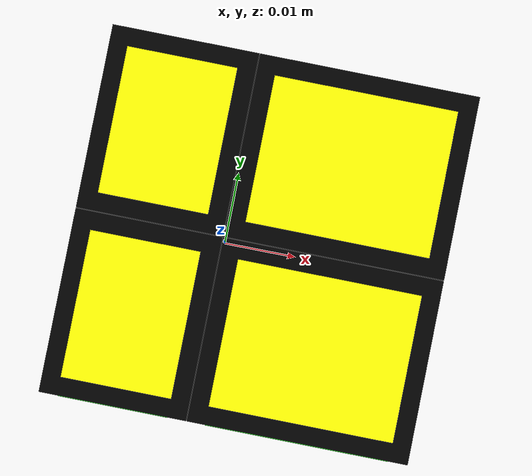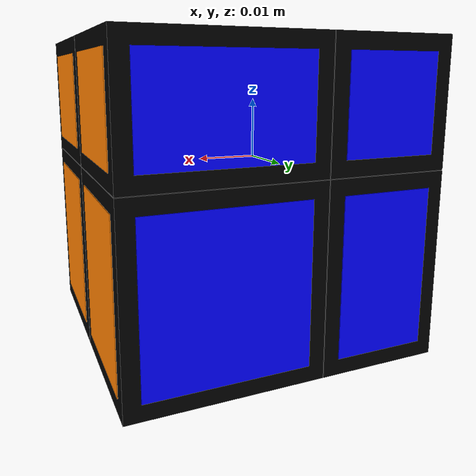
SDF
<?xml version="1.0" ?>
<sdf version="1.7">
	<model name="mirror_cube_2x2">
		<link name="center"/>
		<link name="cubie_0_0_0">
			<pose>-0.01005 -0.01255 -0.015050000000000001 0.0 0.0 0.0</pose>
			<inertial>
				<mass>0.005850000000000001</mass>
				<inertia>
					<ixx>7.434375000000002e-07</ixx>
					<ixy>0.0</ixy>
					<ixz>0.0</ixz>
					<iyy>6.337500000000002e-07</iyy>
					<iyz>0.0</iyz>
					<izz>4.996875000000001e-07</izz>
				</inertia>
			</inertial>
			<collision name="collision">
				<geometry>
					<box>
						<size>0.02 0.025 0.030000000000000002</size>
					</box>
				</geometry>
				<surface>
					<friction>
						<ode>
							<mu>0.6</mu>
							<mu2>0.6</mu2>
						</ode>
					</friction>
				</surface>
			</collision>
			<visual name="black">
				<geometry>
					<box>
						<size>0.02 0.025 0.030000000000000002</size>
					</box>
				</geometry>
				<material>
					<diffuse>0 0 0 1</diffuse>
				</material>
			</visual>
			<visual name="red">
				<pose>-0.01 0.0 0.0 0.0 0.0 0.0</pose>
				<geometry>
					<box>
						<size>0.00015 0.02 0.025</size>
					</box>
				</geometry>
				<material>
					<diffuse>1 0 0 1</diffuse>
				</material>
			</visual>
			<visual name="green">
				<pose>0.0 -0.0125 0.0 0.0 0.0 0.0</pose>
				<geometry>
					<box>
						<size>0.015 0.0002 0.025</size>
					</box>
				</geometry>
				<material>
					<diffuse>0 1 0 1</diffuse>
				</material>
			</visual>
			<visual name="white">
				<pose>0.0 0.0 -0.015000000000000001 0.0 0.0 0.0</pose>
				<geometry>
					<box>
						<size>0.015 0.02 0.00025</size>
					</box>
				</geometry>
				<material>
					<diffuse>1 1 1 1</diffuse>
				</material>
			</visual>
		</link>
		<joint name="ball_0_0_0" type="ball">
			<pose>0.01005 0.01255 0.015050000000000001 -0.0 -0.0 -0.0</pose>
			<parent>center</parent>
			<child>cubie_0_0_0</child>
			<axis>
				<dynamics>
					<damping>0.1</damping>
				</dynamics>
				<limit>
					<effort>0</effort>
				</limit>
			</axis>
		</joint>
		<link name="cubie_0_0_1">
			<pose>-0.01005 -0.01255 0.01005 0.0 0.0 0.0</pose>
			<inertial>
				<mass>0.0039000000000000003</mass>
				<inertia>
					<ixx>3.331250000000001e-07</ixx>
					<ixy>0.0</ixy>
					<ixz>0.0</ixz>
					<iyy>2.6000000000000005e-07</iyy>
					<iyz>0.0</iyz>
					<izz>3.331250000000001e-07</izz>
				</inertia>
			</inertial>
			<collision name="collision">
				<geometry>
					<box>
						<size>0.02 0.025 0.02</size>
					</box>
				</geometry>
				<surface>
					<friction>
						<ode>
							<mu>0.6</mu>
							<mu2>0.6</mu2>
						</ode>
					</friction>
				</surface>
			</collision>
			<visual name="black">
				<geometry>
					<box>
						<size>0.02 0.025 0.02</size>
					</box>
				</geometry>
				<material>
					<diffuse>0 0 0 1</diffuse>
				</material>
			</visual>
			<visual name="red">
				<pose>-0.01 0.0 0.0 0.0 0.0 0.0</pose>
				<geometry>
					<box>
						<size>0.00015 0.02 0.015</size>
					</box>
				</geometry>
				<material>
					<diffuse>1 0 0 1</diffuse>
				</material>
			</visual>
			<visual name="green">
				<pose>0.0 -0.0125 0.0 0.0 0.0 0.0</pose>
				<geometry>
					<box>
						<size>0.015 0.0002 0.015</size>
					</box>
				</geometry>
				<material>
					<diffuse>0 1 0 1</diffuse>
				</material>
			</visual>
			<visual name="yellow">
				<pose>0.0 0.0 0.01 0.0 0.0 0.0</pose>
				<geometry>
					<box>
						<size>0.015 0.02 0.00015</size>
					</box>
				</geometry>
				<material>
					<diffuse>1 1 0 1</diffuse>
				</material>
			</visual>
		</link>
		<joint name="ball_0_0_1" type="ball">
			<pose>0.01005 0.01255 -0.01005 -0.0 -0.0 -0.0</pose>
			<parent>center</parent>
			<child>cubie_0_0_1</child>
			<axis>
				<dynamics>
					<damping>0.1</damping>
				</dynamics>
				<limit>
					<effort>0</effort>
				</limit>
			</axis>
		</joint>
		<link name="cubie_0_1_0">
			<pose>-0.01005 0.01255 -0.015050000000000001 0.0 0.0 0.0</pose>
			<inertial>
				<mass>0.005850000000000001</mass>
				<inertia>
					<ixx>7.434375000000002e-07</ixx>
					<ixy>0.0</ixy>
					<ixz>0.0</ixz>
					<iyy>6.337500000000002e-07</iyy>
					<iyz>0.0</iyz>
					<izz>4.996875000000001e-07</izz>
				</inertia>
			</inertial>
			<collision name="collision">
				<geometry>
					<box>
						<size>0.02 0.025 0.030000000000000002</size>
					</box>
				</geometry>
				<surface>
					<friction>
						<ode>
							<mu>0.6</mu>
							<mu2>0.6</mu2>
						</ode>
					</friction>
				</surface>
			</collision>
			<visual name="black">
				<geometry>
					<box>
						<size>0.02 0.025 0.030000000000000002</size>
					</box>
				</geometry>
				<material>
					<diffuse>0 0 0 1</diffuse>
				</material>
			</visual>
			<visual name="red">
				<pose>-0.01 0.0 0.0 0.0 0.0 0.0</pose>
				<geometry>
					<box>
						<size>0.00015 0.02 0.025</size>
					</box>
				</geometry>
				<material>
					<diffuse>1 0 0 1</diffuse>
				</material>
			</visual>
			<visual name="blue">
				<pose>0.0 0.0125 0.0 0.0 0.0 0.0</pose>
				<geometry>
					<box>
						<size>0.015 0.0002 0.025</size>
					</box>
				</geometry>
				<material>
					<diffuse>0 0 1 1</diffuse>
				</material>
			</visual>
			<visual name="white">
				<pose>0.0 0.0 -0.015000000000000001 0.0 0.0 0.0</pose>
				<geometry>
					<box>
						<size>0.015 0.02 0.00025</size>
					</box>
				</geometry>
				<material>
					<diffuse>1 1 1 1</diffuse>
				</material>
			</visual>
		</link>
		<joint name="ball_0_1_0" type="ball">
			<pose>0.01005 -0.01255 0.015050000000000001 -0.0 -0.0 -0.0</pose>
			<parent>center</parent>
			<child>cubie_0_1_0</child>
			<axis>
				<dynamics>
					<damping>0.1</damping>
				</dynamics>
				<limit>
					<effort>0</effort>
				</limit>
			</axis>
		</joint>
		<link name="cubie_0_1_1">
			<pose>-0.01005 0.01255 0.01005 0.0 0.0 0.0</pose>
			<inertial>
				<mass>0.0039000000000000003</mass>
				<inertia>
					<ixx>3.331250000000001e-07</ixx>
					<ixy>0.0</ixy>
					<ixz>0.0</ixz>
					<iyy>2.6000000000000005e-07</iyy>
					<iyz>0.0</iyz>
					<izz>3.331250000000001e-07</izz>
				</inertia>
			</inertial>
			<collision name="collision">
				<geometry>
					<box>
						<size>0.02 0.025 0.02</size>
					</box>
				</geometry>
				<surface>
					<friction>
						<ode>
							<mu>0.6</mu>
							<mu2>0.6</mu2>
						</ode>
					</friction>
				</surface>
			</collision>
			<visual name="black">
				<geometry>
					<box>
						<size>0.02 0.025 0.02</size>
					</box>
				</geometry>
				<material>
					<diffuse>0 0 0 1</diffuse>
				</material>
			</visual>
			<visual name="red">
				<pose>-0.01 0.0 0.0 0.0 0.0 0.0</pose>
				<geometry>
					<box>
						<size>0.00015 0.02 0.015</size>
					</box>
				</geometry>
				<material>
					<diffuse>1 0 0 1</diffuse>
				</material>
			</visual>
			<visual name="blue">
				<pose>0.0 0.0125 0.0 0.0 0.0 0.0</pose>
				<geometry>
					<box>
						<size>0.015 0.0002 0.015</size>
					</box>
				</geometry>
				<material>
					<diffuse>0 0 1 1</diffuse>
				</material>
			</visual>
			<visual name="yellow">
				<pose>0.0 0.0 0.01 0.0 0.0 0.0</pose>
				<geometry>
					<box>
						<size>0.015 0.02 0.00015</size>
					</box>
				</geometry>
				<material>
					<diffuse>1 1 0 1</diffuse>
				</material>
			</visual>
		</link>
		<joint name="ball_0_1_1" type="ball">
			<pose>0.01005 -0.01255 -0.01005 -0.0 -0.0 -0.0</pose>
			<parent>center</parent>
			<child>cubie_0_1_1</child>
			<axis>
				<dynamics>
					<damping>0.1</damping>
				</dynamics>
				<limit>
					<effort>0</effort>
				</limit>
			</axis>
		</joint>
		<link name="cubie_1_0_0">
			<pose>0.015050000000000001 -0.01255 -0.015050000000000001 0.0 0.0 0.0</pose>
			<inertial>
				<mass>0.008775000000000002</mass>
				<inertia>
					<ixx>1.1151562500000005e-06</ixx>
					<ixy>0.0</ixy>
					<ixz>0.0</ixz>
					<iyy>1.3162500000000005e-06</iyy>
					<iyz>0.0</iyz>
					<izz>1.1151562500000005e-06</izz>
				</inertia>
			</inertial>
			<collision name="collision">
				<geometry>
					<box>
						<size>0.030000000000000002 0.025 0.030000000000000002</size>
					</box>
				</geometry>
				<surface>
					<friction>
						<ode>
							<mu>0.6</mu>
							<mu2>0.6</mu2>
						</ode>
					</friction>
				</surface>
			</collision>
			<visual name="black">
				<geometry>
					<box>
						<size>0.030000000000000002 0.025 0.030000000000000002</size>
					</box>
				</geometry>
				<material>
					<diffuse>0 0 0 1</diffuse>
				</material>
			</visual>
			<visual name="orange">
				<pose>0.015000000000000001 0.0 0.0 0.0 0.0 0.0</pose>
				<geometry>
					<box>
						<size>0.00025 0.02 0.025</size>
					</box>
				</geometry>
				<material>
					<diffuse>1.0 0.5 0.0 1.0</diffuse>
				</material>
			</visual>
			<visual name="green">
				<pose>0.0 -0.0125 0.0 0.0 0.0 0.0</pose>
				<geometry>
					<box>
						<size>0.025 0.0002 0.025</size>
					</box>
				</geometry>
				<material>
					<diffuse>0 1 0 1</diffuse>
				</material>
			</visual>
			<visual name="white">
				<pose>0.0 0.0 -0.015000000000000001 0.0 0.0 0.0</pose>
				<geometry>
					<box>
						<size>0.025 0.02 0.00025</size>
					</box>
				</geometry>
				<material>
					<diffuse>1 1 1 1</diffuse>
				</material>
			</visual>
		</link>
		<joint name="ball_1_0_0" type="ball">
			<pose>-0.015050000000000001 0.01255 0.015050000000000001 -0.0 -0.0 -0.0</pose>
			<parent>center</parent>
			<child>cubie_1_0_0</child>
			<axis>
				<dynamics>
					<damping>0.1</damping>
				</dynamics>
				<limit>
					<effort>0</effort>
				</limit>
			</axis>
		</joint>
		<link name="cubie_1_0_1">
			<pose>0.015050000000000001 -0.01255 0.01005 0.0 0.0 0.0</pose>
			<inertial>
				<mass>0.005850000000000001</mass>
				<inertia>
					<ixx>4.996875000000001e-07</ixx>
					<ixy>0.0</ixy>
					<ixz>0.0</ixz>
					<iyy>6.337500000000002e-07</iyy>
					<iyz>0.0</iyz>
					<izz>7.434375000000002e-07</izz>
				</inertia>
			</inertial>
			<collision name="collision">
				<geometry>
					<box>
						<size>0.030000000000000002 0.025 0.02</size>
					</box>
				</geometry>
				<surface>
					<friction>
						<ode>
							<mu>0.6</mu>
							<mu2>0.6</mu2>
						</ode>
					</friction>
				</surface>
			</collision>
			<visual name="black">
				<geometry>
					<box>
						<size>0.030000000000000002 0.025 0.02</size>
					</box>
				</geometry>
				<material>
					<diffuse>0 0 0 1</diffuse>
				</material>
			</visual>
			<visual name="orange">
				<pose>0.015000000000000001 0.0 0.0 0.0 0.0 0.0</pose>
				<geometry>
					<box>
						<size>0.00025 0.02 0.015</size>
					</box>
				</geometry>
				<material>
					<diffuse>1.0 0.5 0.0 1.0</diffuse>
				</material>
			</visual>
			<visual name="green">
				<pose>0.0 -0.0125 0.0 0.0 0.0 0.0</pose>
				<geometry>
					<box>
						<size>0.025 0.0002 0.015</size>
					</box>
				</geometry>
				<material>
					<diffuse>0 1 0 1</diffuse>
				</material>
			</visual>
			<visual name="yellow">
				<pose>0.0 0.0 0.01 0.0 0.0 0.0</pose>
				<geometry>
					<box>
						<size>0.025 0.02 0.00015</size>
					</box>
				</geometry>
				<material>
					<diffuse>1 1 0 1</diffuse>
				</material>
			</visual>
		</link>
		<joint name="ball_1_0_1" type="ball">
			<pose>-0.015050000000000001 0.01255 -0.01005 -0.0 -0.0 -0.0</pose>
			<parent>center</parent>
			<child>cubie_1_0_1</child>
			<axis>
				<dynamics>
					<damping>0.1</damping>
				</dynamics>
				<limit>
					<effort>0</effort>
				</limit>
			</axis>
		</joint>
		<link name="cubie_1_1_0">
			<pose>0.015050000000000001 0.01255 -0.015050000000000001 0.0 0.0 0.0</pose>
			<inertial>
				<mass>0.008775000000000002</mass>
				<inertia>
					<ixx>1.1151562500000005e-06</ixx>
					<ixy>0.0</ixy>
					<ixz>0.0</ixz>
					<iyy>1.3162500000000005e-06</iyy>
					<iyz>0.0</iyz>
					<izz>1.1151562500000005e-06</izz>
				</inertia>
			</inertial>
			<collision name="collision">
				<geometry>
					<box>
						<size>0.030000000000000002 0.025 0.030000000000000002</size>
					</box>
				</geometry>
				<surface>
					<friction>
						<ode>
							<mu>0.6</mu>
							<mu2>0.6</mu2>
						</ode>
					</friction>
				</surface>
			</collision>
			<visual name="black">
				<geometry>
					<box>
						<size>0.030000000000000002 0.025 0.030000000000000002</size>
					</box>
				</geometry>
				<material>
					<diffuse>0 0 0 1</diffuse>
				</material>
			</visual>
			<visual name="orange">
				<pose>0.015000000000000001 0.0 0.0 0.0 0.0 0.0</pose>
				<geometry>
					<box>
						<size>0.00025 0.02 0.025</size>
					</box>
				</geometry>
				<material>
					<diffuse>1.0 0.5 0.0 1.0</diffuse>
				</material>
			</visual>
			<visual name="blue">
				<pose>0.0 0.0125 0.0 0.0 0.0 0.0</pose>
				<geometry>
					<box>
						<size>0.025 0.0002 0.025</size>
					</box>
				</geometry>
				<material>
					<diffuse>0 0 1 1</diffuse>
				</material>
			</visual>
			<visual name="white">
				<pose>0.0 0.0 -0.015000000000000001 0.0 0.0 0.0</pose>
				<geometry>
					<box>
						<size>0.025 0.02 0.00025</size>
					</box>
				</geometry>
				<material>
					<diffuse>1 1 1 1</diffuse>
				</material>
			</visual>
		</link>
		<joint name="ball_1_1_0" type="ball">
			<pose>-0.015050000000000001 -0.01255 0.015050000000000001 -0.0 -0.0 -0.0</pose>
			<parent>center</parent>
			<child>cubie_1_1_0</child>
			<axis>
				<dynamics>
					<damping>0.1</damping>
				</dynamics>
				<limit>
					<effort>0</effort>
				</limit>
			</axis>
		</joint>
		<link name="cubie_1_1_1">
			<pose>0.015050000000000001 0.01255 0.01005 0.0 0.0 0.0</pose>
			<inertial>
				<mass>0.005850000000000001</mass>
				<inertia>
					<ixx>4.996875000000001e-07</ixx>
					<ixy>0.0</ixy>
					<ixz>0.0</ixz>
					<iyy>6.337500000000002e-07</iyy>
					<iyz>0.0</iyz>
					<izz>7.434375000000002e-07</izz>
				</inertia>
			</inertial>
			<collision name="collision">
				<geometry>
					<box>
						<size>0.030000000000000002 0.025 0.02</size>
					</box>
				</geometry>
				<surface>
					<friction>
						<ode>
							<mu>0.6</mu>
							<mu2>0.6</mu2>
						</ode>
					</friction>
				</surface>
			</collision>
			<visual name="black">
				<geometry>
					<box>
						<size>0.030000000000000002 0.025 0.02</size>
					</box>
				</geometry>
				<material>
					<diffuse>0 0 0 1</diffuse>
				</material>
			</visual>
			<visual name="orange">
				<pose>0.015000000000000001 0.0 0.0 0.0 0.0 0.0</pose>
				<geometry>
					<box>
						<size>0.00025 0.02 0.015</size>
					</box>
				</geometry>
				<material>
					<diffuse>1.0 0.5 0.0 1.0</diffuse>
				</material>
			</visual>
			<visual name="blue">
				<pose>0.0 0.0125 0.0 0.0 0.0 0.0</pose>
				<geometry>
					<box>
						<size>0.025 0.0002 0.015</size>
					</box>
				</geometry>
				<material>
					<diffuse>0 0 1 1</diffuse>
				</material>
			</visual>
			<visual name="yellow">
				<pose>0.0 0.0 0.01 0.0 0.0 0.0</pose>
				<geometry>
					<box>
						<size>0.025 0.02 0.00015</size>
					</box>
				</geometry>
				<material>
					<diffuse>1 1 0 1</diffuse>
				</material>
			</visual>
		</link>
		<joint name="ball_1_1_1" type="ball">
			<pose>-0.015050000000000001 -0.01255 -0.01005 -0.0 -0.0 -0.0</pose>
			<parent>center</parent>
			<child>cubie_1_1_1</child>
			<axis>
				<dynamics>
					<damping>0.1</damping>
				</dynamics>
				<limit>
					<effort>0</effort>
				</limit>
			</axis>
		</joint>
	</model>
</sdf>
